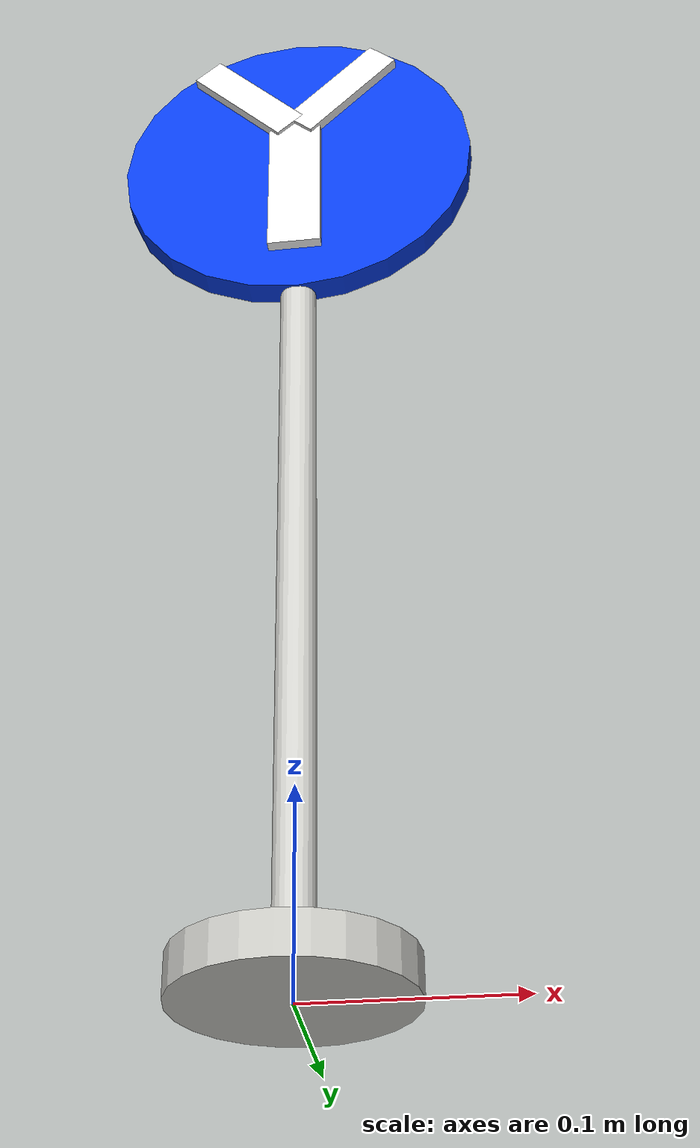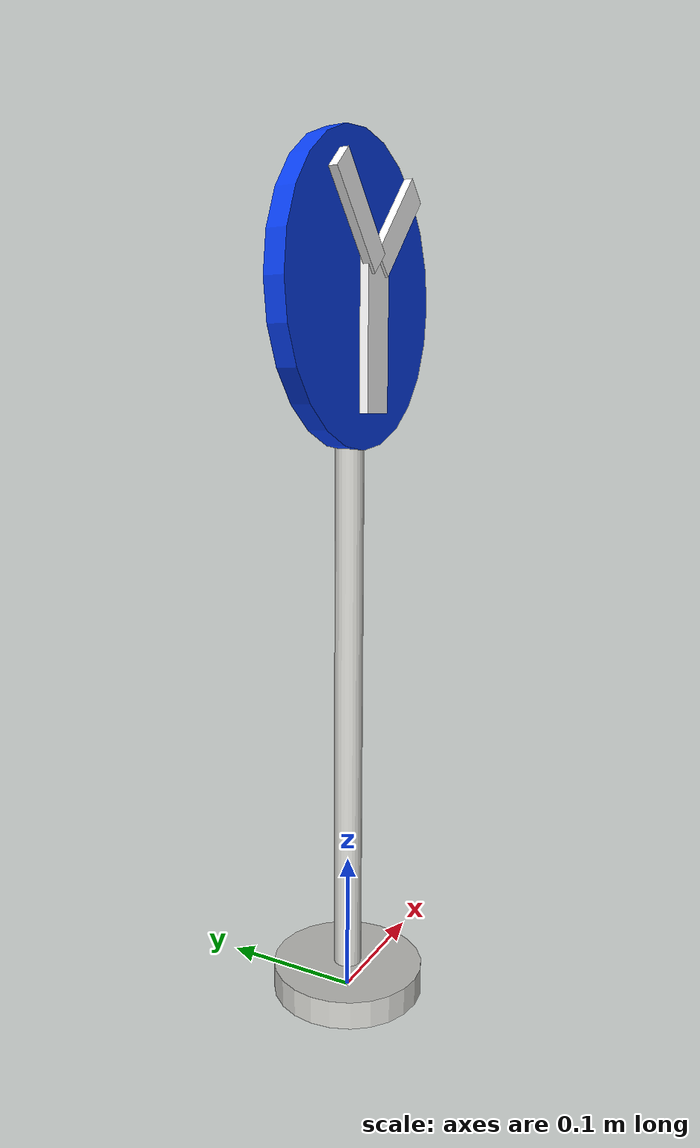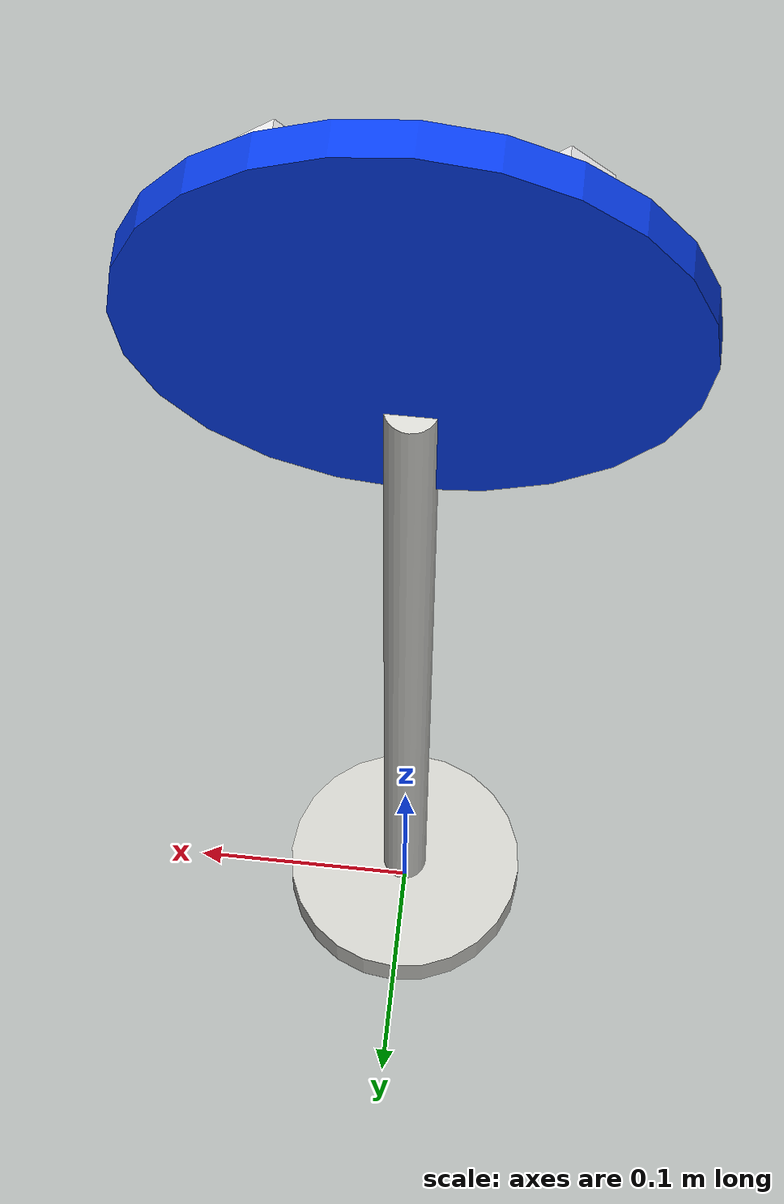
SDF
<?xml version="1.0"?>
<sdf version="1.6">
  <model name="road_sign_arrow">
    <static>true</static>
    <link name="arrow_sign_link">
      <visual name="base_visual">
        <pose>0 0 0.010 0 0 0</pose>
        <geometry>
          <cylinder>
            <radius>0.055</radius>
            <length>0.020</length>
          </cylinder>
        </geometry>
        <material>
          <ambient>0.72 0.72 0.70 1</ambient>
          <diffuse>0.78 0.78 0.76 1</diffuse>
        </material>
      </visual>
      <visual name="pole_visual">
        <pose>0 0 0.230 0 0 0</pose>
        <geometry>
          <cylinder>
            <radius>0.010</radius>
            <length>0.440</length>
          </cylinder>
        </geometry>
        <material>
          <ambient>0.72 0.72 0.70 1</ambient>
          <diffuse>0.82 0.82 0.80 1</diffuse>
        </material>
      </visual>
      <visual name="blue_plate_visual">
        <pose>0 -0.004 0.500 1.5708 0 0</pose>
        <geometry>
          <cylinder>
            <radius>0.102</radius>
            <length>0.014</length>
          </cylinder>
        </geometry>
        <material>
          <ambient>0.02 0.18 0.68 1</ambient>
          <diffuse>0.03 0.24 0.92 1</diffuse>
        </material>
      </visual>
      <visual name="arrow_stem_visual">
        <pose>0 -0.018 0.475 0 0 0</pose>
        <geometry>
          <box>
            <size>0.030 0.006 0.105</size>
          </box>
        </geometry>
        <material>
          <ambient>1.0 1.0 1.0 1</ambient>
          <diffuse>1.0 1.0 1.0 1</diffuse>
        </material>
      </visual>
      <visual name="arrow_head_left_visual">
        <pose>-0.028 -0.020 0.545 0 -0.75 0</pose>
        <geometry>
          <box>
            <size>0.020 0.006 0.075</size>
          </box>
        </geometry>
        <material>
          <ambient>1.0 1.0 1.0 1</ambient>
          <diffuse>1.0 1.0 1.0 1</diffuse>
        </material>
      </visual>
      <visual name="arrow_head_right_visual">
        <pose>0.028 -0.020 0.545 0 0.75 0</pose>
        <geometry>
          <box>
            <size>0.020 0.006 0.075</size>
          </box>
        </geometry>
        <material>
          <ambient>1.0 1.0 1.0 1</ambient>
          <diffuse>1.0 1.0 1.0 1</diffuse>
        </material>
      </visual>
    </link>
  </model>
</sdf>
